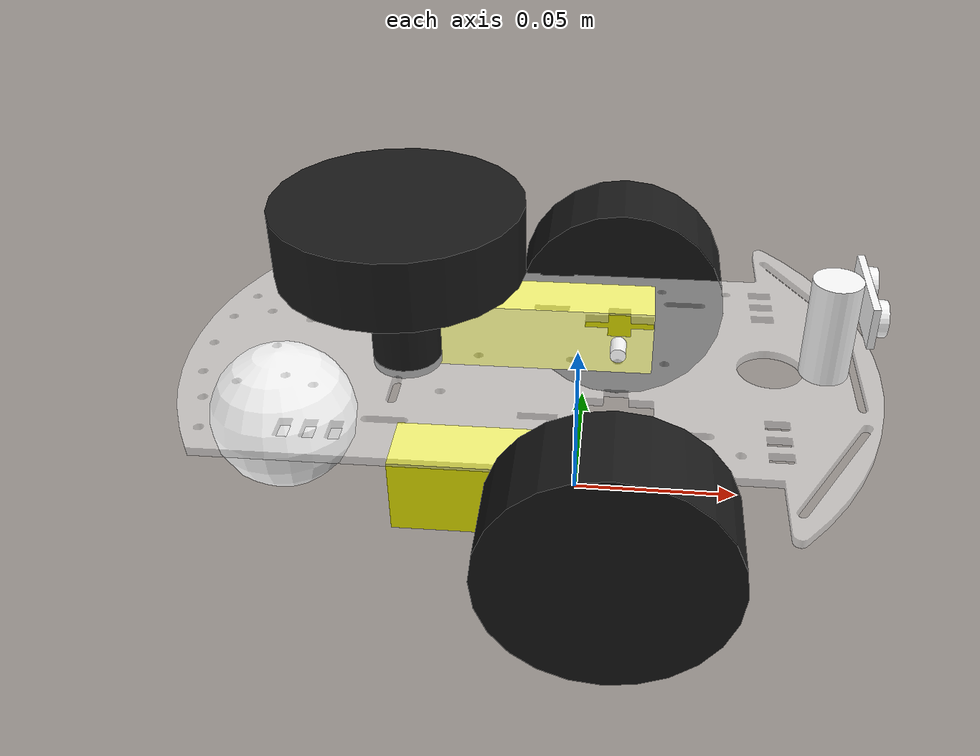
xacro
<?xml version="1.0"?>
<robot name="slambot" xmlns:xacro="http://wiki.ros.org/xacro">
  <!-- Define include files -->
  <xacro:include filename="$(find robot_maze_description)/urdf/maze_generate/materials.urdf.xacro"/>
  <xacro:include filename="$(find robot_maze_description)/urdf/maze_generate/chassis_2wd.urdf.xacro"/>
  <xacro:include filename="$(find robot_maze_description)/urdf/maze_generate/wheel_general.urdf.xacro"/>
  <xacro:include filename="$(find robot_maze_description)/urdf/maze_generate/motor_2wd-kit.urdf.xacro"/>
  <xacro:include filename="$(find robot_maze_description)/urdf/maze_generate/servo_sensor_platform.urdf.xacro"/>
  <xacro:include filename="$(find robot_maze_description)/urdf/maze_generate/ultrasonic_sensor.urdf.xacro"/>
  <xacro:include filename="$(find robot_maze_description)/urdf/maze_generate/lidar.urdf.xacro"/>
  <!-- Define robot constants -->
    <!-- Motor constants -->
    <xacro:property name="motor_gap" value="0.001"/>

    <!-- Wheel constants -->
    <xacro:property name="wheel_radius" value="0.034"/>
    <xacro:property name="wheel_width" value="0.027"/>
    <xacro:property name="wheel_gap" value="0.002"/>
    <xacro:property name="wheel_mass" value="0.1"/>

    <!-- Caster constants -->
    <xacro:property name="caster_mass" value="0.4"/>

    <!-- Sensor Platform constants -->
    <xacro:property name="sensor_platform_radius" value="0.007"/>
    <xacro:property name="sensor_platform_height" value="0.03"/>
    <xacro:property name="sensor_platform_mass" value="0.1"/>

    <!-- Ultrasonic Sensor constants -->
    <xacro:property name="sensor_width" value="0.03"/>
    <xacro:property name="sensor_height" value="0.012"/>
    <xacro:property name="sensor_length" value="0.005"/>
    <xacro:property name="sensor_mass" value="0.1"/>

  <!-- Define robot offsets -->
    <!-- Motor offsets -->
    <xacro:property name="motor_xoff" value="-0.0125"/>
    <xacro:property name="motor_yoff" value="${(chassis_width/2)-(motor_width/2)-motor_gap}"/>
    <xacro:property name="motor_zoff" value="${-motor_height/2}"/>

    <!-- Wheel offsets -->
    <xacro:property name="wheel_xoff" value="0"/>
    <xacro:property name="wheel_yoff" value="0"/>
    <xacro:property name="wheel_zoff" value="${-((wheel_width+motor_width)/2 + motor_gap + wheel_gap)}"/>

    <!-- Sensor Platform offsets -->
    <xacro:property name="sensor_platform_xoff" value="0.07"/>
    <xacro:property name="sensor_platform_yoff" value="0"/>
    <xacro:property name="sensor_platform_zoff" value="${sensor_platform_height/2 + chassis_height}"/>

    <!-- Sensor offsets -->
    <xacro:property name="sensor_xoff" value="${sensor_platform_radius + 0.002/2}"/>
    <xacro:property name="sensor_yoff" value="0"/>
    <xacro:property name="sensor_zoff" value="${sensor_platform_height/2 - sensor_height/2}"/>

    <!-- Chassis offsets -->
    <xacro:property name="chassis_xoff" value="0"/>
    <xacro:property name="chassis_yoff" value="0"/>
    <xacro:property name="chassis_zoff" value="${(motor_height/2)+wheel_radius}"/>

    <!-- Caster Wheel offsets -->
    <xacro:property name="caster_radius" value="${(chassis_zoff)/2}"/>
    <xacro:property name="caster_xoff" value="${-(chassis_length/2 - 0.01)}"/>
    <xacro:property name="caster_yoff" value="0"/>
    <xacro:property name="caster_zoff" value="${-caster_radius}"/>

    <!-- Lidar offsets -->
    <xacro:property name="lidar_xoff" value="-0.05"/>
    <xacro:property name="lidar_yoff" value="0.00"/>
    <xacro:property name="lidar_zoff" value="0.00"/>

  <!-- Define robot links -->
  <link name="base_link"/>

  <!-- BASE_FOOTPRINT LINK -->
  <link name="base_footprint">
  </link>
  <joint name="base_footprint_joint" type="fixed">
      <parent link="base_link"/>
      <child link="base_footprint"/>
      <origin xyz="0 0 0" rpy="0 0 0"/>
  </joint>

  <!-- Chassis -->
  <xacro:chassis parent="base_link" child="chassis_link" xyz="${chassis_xoff} ${chassis_yoff} ${chassis_zoff}" rpy="0 0 0" color="transparent"/>

  <!-- Motor -->
  <xacro:motor parent="chassis_link" child="motor_left_link" xyz="${motor_xoff} ${motor_yoff} ${motor_zoff}" rpy="0 0 0" motor_color="yellow" axis_color="white"/>
  <xacro:motor parent="chassis_link" child="motor_right_link" xyz="${motor_xoff} ${-motor_yoff} ${motor_zoff}" rpy="${pi} 0 0" motor_color="yellow" axis_color="white"/>

  <!-- Wheel -->
  <xacro:wheel parent="motor_left_link" prefix="wheel_left" radius="${wheel_radius}" width="${wheel_width}" xyz="${wheel_xoff} ${wheel_yoff} ${wheel_zoff}" rpy="0 ${pi} 0" type="diff" color="black" mass="${wheel_mass}"/>
  <xacro:wheel parent="motor_right_link" prefix="wheel_right" radius="${wheel_radius}" width="${wheel_width}" xyz="${wheel_xoff} ${wheel_yoff} ${wheel_zoff}" rpy="0 0 0" type="diff" color="black" mass="${wheel_mass}"/>

  <!-- Caster Wheel -->
  <xacro:wheel parent="chassis_link" prefix="caster" radius="${caster_radius}" width="${wheel_width}" xyz="${caster_xoff} ${caster_yoff} ${caster_zoff}" rpy="0 0 0" type="omni" color="white" mass="${caster_mass}"/>

  <!-- Servo for Ultrasonic Sensor -->
  <xacro:servo_sensor_platform parent="chassis" child="servo_platform" xyz="${sensor_platform_xoff} ${sensor_platform_yoff} ${sensor_platform_zoff}" rpy="0 0 0" color="white" radius="${sensor_platform_radius}" height="${sensor_platform_height}" mass="${sensor_platform_mass}"/>

  <!-- Ultrasonic Sensor -->
  <xacro:ultrasonic_sensor parent="servo_platform" child="ultrasonic_sensor" xyz="${sensor_xoff} ${sensor_yoff} ${sensor_zoff}" rpy="0 0 0" color="white" width="${sensor_width}" height="${sensor_height}" length="${sensor_length}" mass="${sensor_mass}"/>

  <!-- Lidar -->
  <xacro:rplidar parent="chassis" child="rplidar" x="${lidar_xoff}" y="${lidar_yoff}" z="${lidar_zoff}" rpy="0 0 ${pi}"/>

  <xacro:include filename="$(find robot_maze_description)/urdf/maze_generate/gazebo_control.xacro"/>

</robot>

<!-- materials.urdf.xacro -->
<robot xmlns:xacro="http://wiki.ros.org/xacro">
    <material name="black">
        <color rgba="0.1 0.1 0.1 1"/>
    </material>

    <material name="white">
        <color rgba="1 1 1 1"/>
    </material>

    <material name="grey">
        <color rgba="0.5 0.5 0.5 1"/>
    </material>

    <material name="red">
        <color rgba="1 0 0 1"/>
    </material>

    <material name="green">
        <color rgba="0 1 0 1"/>
    </material>

    <material name="blue">
        <color rgba="0 0 1 1"/>
    </material>

    <material name="yellow">
        <color rgba="1 1 0 1"/>
    </material>

    <material name="transparent">
        <color rgba="1 1 1 0.5"/>
    </material>
</robot>

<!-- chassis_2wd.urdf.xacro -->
<robot xmlns:xacro="http://wiki.ros.org/xacro">
    <xacro:include filename="$(find robot_maze_description)/urdf/maze_generate/inertial_macros.urdf.xacro" />

    <!-- Chassis constants -->
    <xacro:property name="chassis_length" value="0.2"/>
    <xacro:property name="chassis_width" value="0.1"/>
    <xacro:property name="chassis_height" value="0.0025"/>
    <xacro:property name="chassis_base_length" value="0.155"/>
    <xacro:property name="chassis_base_width" value="0.1"/>
    <xacro:property name="chassis_front_length" value="0.031"/>
    <xacro:property name="chassis_front_width" value="0.144"/>
    <xacro:property name="chassis_back_length" value="0.014"/>
    <xacro:property name="chassis_back_width" value="0.100"/>

    <xacro:property name="chassis_mass" value="0.1"/>

  <xacro:macro name="chassis" params="parent child xyz rpy color">

    <link name="${child}">
        <visual>
            <origin xyz="-${(chassis_length/2)} -${chassis_width/2} ${chassis_height}" rpy="${pi/2} 0 ${pi/2}"/>
            <geometry>
                <mesh filename="file://$(find robot_maze_description)/urdf/maze_generate/chassis-2WD.stl" scale= "1 1 1"/>
            </geometry>
            <material name="${color}"/>
        </visual>
        <collision>
            <origin xyz="${-(chassis_back_length)} 0 0"/>
            <geometry>
                <box size="${chassis_length} ${chassis_width} ${chassis_height}"/>
            </geometry>
        </collision>
        <xacro:inertial_box mass="${chassis_mass}" x="${chassis_length}" y="${chassis_width}" z="${chassis_height}">
            <origin xyz="${-(chassis_back_length)} 0 0" rpy="0 0 0"/>
        </xacro:inertial_box>

    </link>

    <joint name="${parent}_to_${child}_joint" type="fixed">
        <origin xyz="${xyz}" rpy="${rpy}" />
        <parent link="${parent}" />
        <child link="${child}" />
    </joint>

    <gazebo reference="${child}">
        <material>Gazebo/White</material>
    </gazebo>
  </xacro:macro>

</robot>

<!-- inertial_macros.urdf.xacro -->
<robot xmlns:xacro="http://wiki.ros.org/xacro">
    <!-- See https://github.com/joshnewans/articubot_one/blob/adb08202d3dafeeaf8a3691ddd64aa8551c40f78/description/inertial_macros.xacro -->

    <!-- Specify some standard inertial calculations https://en.wikipedia.org/wiki/List_of_moments_of_inertia -->
    <!-- These make use of xacro's mathematical functionality -->

    <xacro:macro name="inertial_sphere" params="mass radius *origin">
        <inertial>
            <xacro:insert_block name="origin"/>
            <mass value="${mass}" />
            <inertia ixx="${(2/5) * mass * (radius*radius)}" ixy="0.0" ixz="0.0"
                    iyy="${(2/5) * mass * (radius*radius)}" iyz="0.0"
                    izz="${(2/5) * mass * (radius*radius)}" />
        </inertial>
    </xacro:macro>

    <xacro:macro name="inertial_box" params="mass x y z *origin">
        <inertial>
            <xacro:insert_block name="origin"/>
            <mass value="${mass}" />
            <inertia ixx="${(1/12) * mass * (y*y+z*z)}" ixy="0.0" ixz="0.0"
                    iyy="${(1/12) * mass * (x*x+z*z)}" iyz="0.0"
                    izz="${(1/12) * mass * (x*x+y*y)}" />
        </inertial>
    </xacro:macro>

    <xacro:macro name="inertial_cylinder" params="mass length radius *origin">
        <inertial>
            <xacro:insert_block name="origin"/>
            <mass value="${mass}" />
            <inertia ixx="${(1/12) * mass * (3*radius*radius + length*length)}" ixy="0.0" ixz="0.0"
                    iyy="${(1/12) * mass * (3*radius*radius + length*length)}" iyz="0.0"
                    izz="${(1/2) * mass * (radius*radius)}" />
        </inertial>
    </xacro:macro>

</robot>

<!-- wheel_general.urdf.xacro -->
<robot xmlns:xacro="http://wiki.ros.org/xacro">
    <xacro:include filename="$(find robot_maze_description)/urdf/maze_generate/inertial_macros.urdf.xacro" />
  <xacro:macro name="wheel" params="parent prefix xyz rpy type width radius color mass">
    <xacro:if value="${type == 'diff'}">
        <link name="${prefix}_link">
            <visual>
                <geometry>
                    <cylinder radius="${radius}" length="${width}"/>
                </geometry>
                <material name="${color}"/>
            </visual>
            <collision>
                <geometry>
                    <cylinder radius="${radius}" length="${width}"/>
                </geometry>
            </collision>
            <xacro:inertial_cylinder mass="${mass}" length="${width}" radius="${radius}">
                <origin xyz="0 0 0" rpy="0 0 0"/>
            </xacro:inertial_cylinder>
        </link>

        <joint name="${prefix}_joint" type="continuous">
            <axis xyz="0 0 1"/>
            <origin xyz="${xyz}" rpy="${rpy}" />
            <parent link="${parent}" />
            <child link="${prefix}_link" />
        </joint>

        <gazebo reference="${prefix}_link">
            <material>Gazebo/Black</material>
            <mu1>1.0</mu1>
            <mu2>1.0</mu2>
        </gazebo>
    </xacro:if>

    <xacro:if value="${type == 'omni'}">
        <link name="${prefix}_link">
            <visual>
                <geometry>
                    <sphere radius="${radius}"/>
                </geometry>
                <material name="${color}"/>
            </visual>
            <collision>
                <geometry>
                    <sphere radius="${radius}"/>
                </geometry>
            </collision>
            <xacro:inertial_sphere mass="${mass}" radius="${radius}">
                <origin xyz="0 0 0" rpy="0 0 0"/>
            </xacro:inertial_sphere>
        </link>
        <joint name="${prefix}_joint" type="fixed">
            <axis xyz="0.0 0.0 1"/>
            <origin xyz="${xyz}" rpy="${rpy}" />
            <parent link="${parent}" />
            <child link="${prefix}_link" />
        </joint>
        <gazebo reference="${prefix}_link">
            <material>Gazebo/White</material>
            <mu1>0.01</mu1>
            <mu2>0.01</mu2>
        </gazebo>
    </xacro:if>
  </xacro:macro>

</robot>

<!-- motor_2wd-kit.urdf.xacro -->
<robot xmlns:xacro="http://wiki.ros.org/xacro">
    <xacro:include filename="$(find robot_maze_description)/urdf/maze_generate/inertial_macros.urdf.xacro" />
    <!-- Motor constants -->
    <xacro:property name="motor_length" value="0.07"/>
    <xacro:property name="motor_width" value="0.018"/>
    <xacro:property name="motor_height" value="0.022"/>
    <xacro:property name="motor_mass" value="0.05"/>

    <!-- Motor Axis constants -->
    <xacro:property name="motor_axis_radius" value="0.0025"/>
    <xacro:property name="motor_axis_length" value="0.03285"/>
    <xacro:property name="motor_axis_mass" value="0.003"/>

    <!-- Motor Axis offsets -->
    <xacro:property name="motor_axis_xoff" value="${motor_length/2 - motor_height/2}"/>
    <xacro:property name="motor_axis_yoff" value="0"/>
    <xacro:property name="motor_axis_zoff" value="0"/>

  <xacro:macro name="motor" params="parent child xyz rpy motor_color axis_color">

    <link name="${child}_main">
        <visual>
            <geometry>
                <box size="${motor_length} ${motor_width} ${motor_height}"/>
            </geometry>
            <material name="${motor_color}"/>
        </visual>
        <collision>
            <geometry>
                <box size="${motor_length} ${motor_width} ${motor_height}"/>
            </geometry>
        </collision>
        <xacro:inertial_box mass="${motor_mass-motor_axis_mass}" x="${motor_length}" y="${motor_width}" z="${motor_height}">
            <origin xyz="0 0 0" rpy="0 0 0"/>
        </xacro:inertial_box>
    </link>

    <joint name="${parent}_to_${child}_main_joint" type="fixed">
        <origin xyz="${xyz}" rpy="${rpy}" />
        <parent link="${parent}" />
        <child link="${child}_main" />
    </joint>

    <gazebo reference="${child}_main">
        <material>Gazebo/Yellow</material>
    </gazebo>

    <link name="${child}">
        <visual>
            <geometry>
                <cylinder radius="${motor_axis_radius}" length="${motor_axis_length}"/>
            </geometry>
            <material name="${axis_color}"/>
        </visual>
        <collision>
            <geometry>
                <cylinder radius="${motor_axis_radius}" length="${motor_axis_length}"/>
            </geometry>
        </collision>
        <xacro:inertial_cylinder mass="${motor_axis_mass}" length="${motor_axis_length}" radius="${motor_axis_radius}">
            <origin xyz="0 0 0" rpy="0 0 0"/>
        </xacro:inertial_cylinder>
    </link>
    <joint name="${parent}_to_${child}_axis_joint" type="fixed">
        <origin xyz="${motor_axis_xoff} ${motor_axis_yoff} ${motor_axis_zoff}" rpy="${pi/2} 0 0"/>
        <parent link="${child}_main"/>
        <child link="${child}"/>
    </joint>
    <gazebo reference="${child}">
        <material>Gazebo/White</material>
    </gazebo>

  </xacro:macro>
</robot>

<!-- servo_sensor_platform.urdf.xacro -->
<robot xmlns:xacro="http://wiki.ros.org/xacro">
    <xacro:include filename="$(find robot_maze_description)/urdf/maze_generate/inertial_macros.urdf.xacro" />
   <xacro:macro name="servo_sensor_platform" params="parent child xyz rpy color height radius mass">
        <link name="${child}_link">
            <visual>
                <geometry>
                    <cylinder radius="${radius}" length="${height}"/>
                </geometry>
                <material name="${color}"/>
            </visual>
            <collision>
                <geometry>
                    <cylinder radius="${radius}" length="${height}"/>
                </geometry>
            </collision>
            <xacro:inertial_cylinder mass="${mass}" length="${height}" radius="${radius}">
                <origin xyz="0 0 0" rpy="0 0 0"/>
            </xacro:inertial_cylinder>
        </link>
        <joint name="${child}_joint" type="fixed">
            <axis xyz="0 0 1"/>
            <limit velocity="6.5" effort="1000" lower="0" upper="0" />
            <origin xyz="${xyz}" rpy="${rpy}" />
            <parent link="${parent}_link" />
            <child link="${child}_link" />
        </joint>
        <gazebo reference="${child}_link">
            <material>Gazebo/White</material>
        </gazebo>
   </xacro:macro>
</robot>

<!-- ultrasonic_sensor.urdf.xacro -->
<robot xmlns:xacro="http://wiki.ros.org/xacro">
    <xacro:include filename="$(find robot_maze_description)/urdf/maze_generate/inertial_macros.urdf.xacro" />
    <xacro:macro name="ultrasonic_sensor" params="parent child xyz rpy color height width length mass">
        <xacro:property name="pcb_thickness" value="0.002"/>
        <xacro:property name="pcb_mass" value="0.005"/>
        <xacro:property name="cylinder_radius" value="${height/2 - 0.001}"/>
        <xacro:property name="cylinder_length" value="${length-pcb_thickness}"/>
        <xacro:property name="cylinder_mass" value="${(mass-pcb_mass)/2}"/>
        <xacro:property name="cyinder_xoff" value="${pcb_thickness/2 + cylinder_length/2}"/>
        <xacro:property name="cyinder_yoff" value="${width/2-cylinder_radius - (height/2-cylinder_radius)}"/>
        <xacro:property name="cyinder_zoff" value="0"/>

        <xacro:property name="topic" value="slambot/ultrasonic"/>
        <xacro:property name="update_rate" value="10"/>
        <xacro:property name="samples" value="1"/>
        <xacro:property name="fov" value="0.1"/>
        <xacro:property name="range_min" value="0.1"/>
        <xacro:property name="range_max" value="10"/>
        <xacro:property name="range_stddev" value="0.01"/>

        <link name="${child}_link">
            <visual>
                <geometry>
                    <box size="${pcb_thickness} ${width} ${height}"/>
                </geometry>
                <material name="${color}"/>
            </visual>
            <collision>
                <geometry>
                    <box size="${length} ${width} ${height}"/>
                </geometry>
            </collision>
            <xacro:inertial_box mass="${pcb_mass}" x="${length}" y="${width}" z="${height}">
                <origin xyz="0 0 0" rpy="0 0 0"/>
            </xacro:inertial_box>
        </link>
        <joint name="${child}_joint" type="fixed">
            <origin xyz="${xyz}" rpy="${rpy}" />
            <parent link="${parent}_link" />
            <child link="${child}_link" />

            <limit upper="0" lower="0" effort="0" velocity="0" />
            <axis xyz="1 0 0"/>
        </joint>
        <gazebo reference="${child}_link">
            <material>Gazebo/White</material>
        </gazebo>

        <link name="${child}_transmitter_link">
            <visual>
                <geometry>
                    <cylinder radius="${cylinder_radius}" length="${cylinder_length}"/>
                </geometry>
                <material name="${color}"/>
            </visual>
            <collision>
                <geometry>
                    <cylinder radius="${cylinder_radius}" length="${cylinder_length}"/>
                </geometry>
            </collision>
            <xacro:inertial_cylinder mass="${cylinder_mass}" radius="${cylinder_radius}" length="${cylinder_length}">
                <origin xyz="0 0 0" rpy="0 0 0"/>
            </xacro:inertial_cylinder>
        </link>
        <joint name="${child}_transmitter_joint" type="fixed">
            <origin xyz="${cyinder_xoff} ${-cyinder_yoff} ${cyinder_zoff}" rpy="0 ${pi/2} 0" />
            <parent link="${child}_link" />
            <child link="${child}_transmitter_link" />
        </joint>
        <gazebo reference="${child}_transmitter_link">
            <material>Gazebo/White</material>
        </gazebo>

        <link name="${child}_receiver_link">
            <visual>
                <geometry>
                    <cylinder radius="${cylinder_radius}" length="${cylinder_length}"/>
                </geometry>
                <material name="${color}"/>
            </visual>
            <collision>
                <geometry>
                    <cylinder radius="${cylinder_radius}" length="${cylinder_length}"/>
                </geometry>
            </collision>
            <xacro:inertial_cylinder mass="${cylinder_mass}" radius="${cylinder_radius}" length="${cylinder_length}">
                <origin xyz="0 0 0" rpy="0 0 0"/>
            </xacro:inertial_cylinder>
        </link>
        <joint name="${child}_receiver_joint" type="fixed">
            <origin xyz="${cyinder_xoff} ${cyinder_yoff} ${cyinder_zoff}" rpy="0 ${pi/2} 0" />
            <parent link="${child}_link" />
            <child link="${child}_receiver_link" />
        </joint>
        <gazebo reference="${child}_receiver_link">
            <material>Gazebo/White</material>
        </gazebo>

    </xacro:macro>
</robot>

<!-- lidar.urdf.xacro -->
<robot xmlns:xacro="http://wiki.ros.org/xacro">
    <xacro:include filename="$(find robot_maze_description)/urdf/maze_generate/inertial_macros.urdf.xacro" />
   <xacro:macro name="rplidar" params="parent child x y z rpy">
        <xacro:property name="cylinder_height" value="0.02"/>
        <xacro:property name="cylinder_radius" value="0.035"/>
        <xacro:property name="platform_height" value="0.031"/>
        <xacro:property name="color" value="black"/>
        <xacro:property name="mass" value="0.1"/>
        <xacro:property name="x_offset" value="${x}"/>
        <xacro:property name="y_offset" value="${y}"/>
        <xacro:property name="z_offset" value="${z + cylinder_height/2 + platform_height}"/>

        <link name="${child}_link">
            <visual>
                <geometry>
                    <cylinder radius="${cylinder_radius}" length="${cylinder_height}"/>
                </geometry>
                <material name="black"/>
            </visual>
            <visual>
                <origin xyz="0 0 -${platform_height/2 + cylinder_height/2}"/>
                <geometry>
                    <cylinder radius="0.01" length="${platform_height}"/>
                </geometry>
                <material name="${color}"/>
            </visual>
            <collision>
                <geometry>
                    <cylinder radius="${cylinder_radius}" length="${cylinder_height}"/>
                </geometry>
            </collision>
            <xacro:inertial_cylinder mass="0.1" radius="${cylinder_radius}" length="${cylinder_height}">
                <origin xyz="0 0 0" rpy="0 0 0"/>
            </xacro:inertial_cylinder>
        </link>

        <joint name="${child}_joint" type="fixed">
            <axis xyz="0 0 1"/>
            <limit velocity="6.5" effort="1000" lower="0" upper="0" />
            <origin rpy="${rpy}" xyz="${x_offset} ${y_offset} ${z_offset}" />
            <parent link="${parent}_link" />
            <child link="${child}_link" />
        </joint>

        <gazebo reference="${child}_link">
            <material>Gazebo/Black</material>
            <sensor name="laser" type="gpu_lidar">
                <pose> 0 0 0 0 0 0 </pose>
                <always_on>true</always_on>
                <visualize>true</visualize>
                <update_rate>10</update_rate>
                <topic>lidarscan</topic>
                <gz_frame_id>${child}_link</gz_frame_id>
                <lidar>
                    <scan>
                        <horizontal>
                            <samples>360</samples>
                            <min_angle>-3.14</min_angle>
                            <max_angle>3.14</max_angle>
                        </horizontal>
                    </scan>
                    <range>
                        <min>0.15</min>
                        <max>12</max>
                    </range>
                </lidar>
            </sensor>
        </gazebo>
    </xacro:macro>
</robot>
